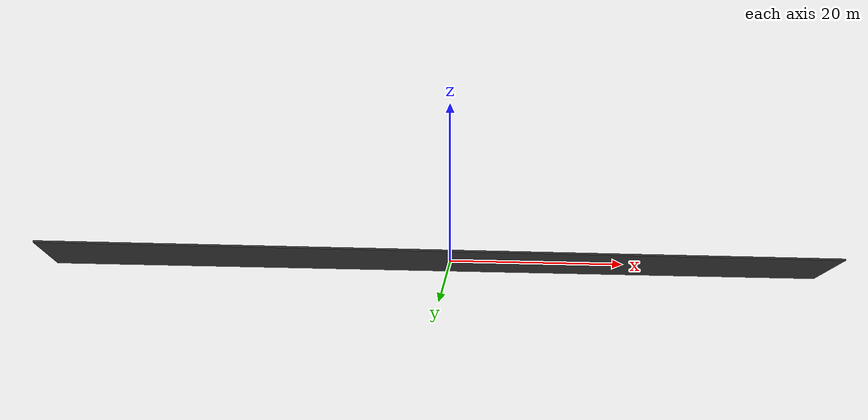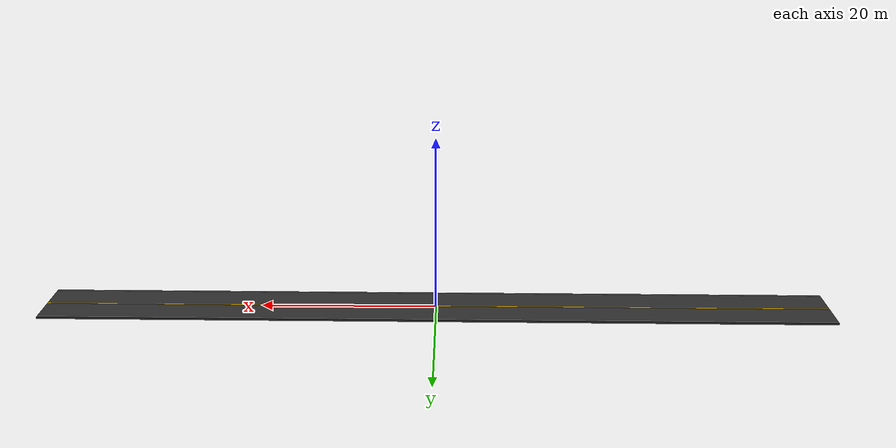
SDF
<?xml version="1.0"?>
<sdf version="1.9">
  <!-- GŁÓWNA DROGA POZIOMA -->
  <model name="road">
      <pose>0 0 0 0 0 0</pose>
      <static>true</static>
      <link name="link">
        <collision name="col">
          <geometry>
            <box><size>90 8 0.2</size></box>
          </geometry>
        </collision>
        <visual name="vis_road">
          <geometry>
            <box><size>90 8 0.2</size></box>
          </geometry>
          <material>
            <ambient>0.15 0.15 0.15 1</ambient>
            <diffuse>0.18 0.18 0.18 1</diffuse>
          </material>
        </visual>
        <!-- Środkowy pas (żółty) -->
        <visual name="vis_center_line">
          <pose>0 0 0.102 0 0 0</pose>
          <geometry>
            <box><size>90 0.2 0.01</size></box>
          </geometry>
          <material>
            <ambient>0.9 0.7 0.0 1</ambient>
            <diffuse>0.9 0.7 0.0 1</diffuse>
          </material>
        </visual>
        <!-- Lewy pas (biały) -->
        <visual name="vis_left_line">
          <pose>0 3.8 0.101 0 0 0</pose>
          <geometry>
            <box><size>90 0.1 0.01</size></box>
          </geometry>
          <material>
            <ambient>0.9 0.9 0.9 1</ambient>
            <diffuse>0.9 0.9 0.9 1</diffuse>
          </material>
        </visual>
        <!-- Prawy pas (biały) -->
        <visual name="vis_right_line">
          <pose>0 -3.8 0.101 0 0 0</pose>
          <geometry>
            <box><size>90 0.1 0.01</size></box>
          </geometry>
          <material>
            <ambient>0.9 0.9 0.9 1</ambient>
            <diffuse>0.9 0.9 0.9 1</diffuse>
          </material>
        </visual>
      </link>
  </model>
</sdf>
